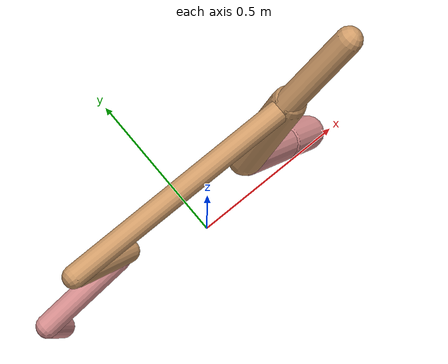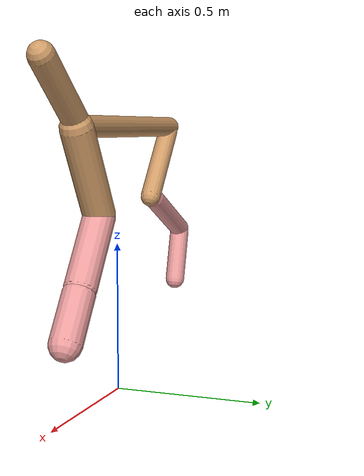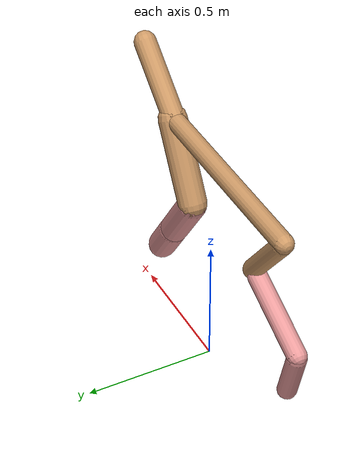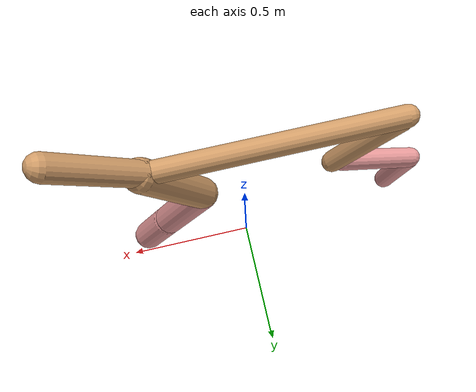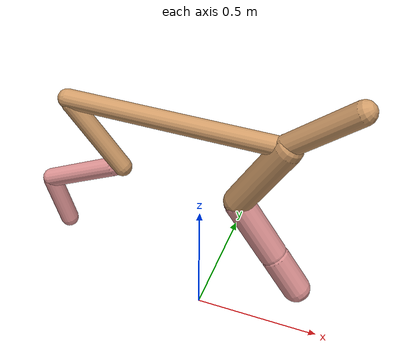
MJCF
<mujoco model="cheetah">
  <compiler angle="radian" coordinate="local" inertiafromgeom="true" settotalmass="14" />
  <default>
    <joint armature=".1" damping=".01" limited="true" solimplimit="0 .8 .03" solreflimit=".02 1" stiffness="8" />
    <geom conaffinity="0" condim="3" contype="1" friction="0.8 .1 .1" rgba="0.8 0.6 .4 1" solimp="0.0 0.8 0.01" solref="0.02 1" />
    <motor ctrllimited="true" ctrlrange="-1 1" />
  </default>
  <size nstack="300000" nuser_geom="1" />
  <option gravity="0 0 -9.81" timestep="0.01" />
  <worldbody>
    <body name="torso" pos="0.0 0.0 0.8922393460276636">
      <joint armature="0" axis="1 0 0" damping="0" limited="false" name="ignorex" pos="0 0 0" stiffness="0" type="slide" />
      <joint armature="0" axis="0 0 1" damping="0" limited="false" name="ignorez" pos="0 0 0" stiffness="0" type="slide" />
      <joint armature="0" axis="0 1 0" damping="0" limited="false" name="ignorey" pos="0 0 0" stiffness="0" type="hinge" />
      <geom fromto="-0.5 0.0 0.0 0.30839154812623654 0.0 0.0" name="torso" size="0.03557622306902183" type="capsule" />
      <geom axisangle="0 1 0 .87" name="head" pos="0.40839154812623646 0.0 0.1" size="0.041793863518856555 0.15" type="capsule" />

      <body name="bthigh" pos="-.5 0 0">
        <joint axis="0 1 0" damping="6" name="bthigh" pos="0 0 0" range="-.52 1.05" stiffness="240" type="hinge" />
        <geom axisangle="0 1 0 -3.8" name="bthigh" pos="0.10327427736799284 0.0 -0.1342565605783907" size="0.035984050376507884 0.15037021417078125" type="capsule" />
        <body name="bshin" pos="0.16654855473598568 0.0 -0.2585131211567814">
          <joint axis="0 1 0" damping="4.5" name="bshin" pos="0 0 0" range="-.785 .785" stiffness="180" type="hinge" />
          <geom axisangle="0 1 0 -2.03" name="bshin" pos="-0.1449688954232826 0.0 -0.0724844477116413" rgba="0.9 0.6 0.6 1" size="0.035984050376507884 0.15555539396977372" type="capsule" />
          <body name="bfoot" pos="-0.2899377908465652 0.0 -0.1449688954232826">
            <joint axis="0 1 0" damping="3" name="bfoot" pos="0 0 0" range="-.4 .785" stiffness="120" type="hinge" />
            <geom axisangle="0 1 0 -.27" name="bfoot" pos="0.03102864244930243 0.0 -0.1003259439194112" rgba="0.9 0.6 0.6 1" size="0.035984050376507884 0.0974813802210582" type="capsule" />
            <inertial mass="10" />
          </body>
        </body>
      </body>
      <body name="fthigh" pos="0.3083915481262365 0.0 0.0">
        <joint axis="0 1 0" damping="4.5" name="fthigh" pos="0 0 0" range="-1.5 0.8" stiffness="180" type="hinge" />
        <geom axisangle="0 1 0 .52" name="fthigh" pos="-0.08347582661617378 0.0 -0.1431014170562979" size="0.05408803049211288 0.15974459521096157" type="capsule" />
        <body name="fshin" pos="-0.16695165323234756 0.0 -0.2862028341125958">
          <joint axis="0 1 0" damping="3" name="fshin" pos="0 0 0" range="-1.2 1.1" stiffness="120" type="hinge" />
          <geom axisangle="0 1 0 -.6" name="fshin" pos="0.07747987243169445 0.0 -0.10727982336696154" rgba="0.9 0.6 0.6 1" size="0.05408803049211288 0.12731524129595434" type="capsule" />
          <body name="ffoot" pos="0.1549597448633889 0.0 -0.21455964673392308">
            <joint axis="0 1 0" damping="1.5" name="ffoot" pos="0 0 0" range="-3.1 -0.3" stiffness="60" type="hinge" />
            <geom axisangle="0 1 0 -.6" name="ffoot" pos="0.05261175941417585 0.0 -0.08184051464427355" rgba="0.9 0.6 0.6 1" size="0.05408803049211288 0.08407610274261136" type="capsule" />
            <inertial mass="10" />
          </body>
        </body>
      </body>
    </body>
  </worldbody>
  <actuator>
    <motor gear="120" joint="bthigh" name="bthigh" />
    <motor gear="90" joint="bshin" name="bshin" />
    <motor gear="60" joint="bfoot" name="bfoot" />
    <motor gear="120" joint="fthigh" name="fthigh" />
    <motor gear="60" joint="fshin" name="fshin" />
    <motor gear="30" joint="ffoot" name="ffoot" />
  </actuator>
</mujoco>
